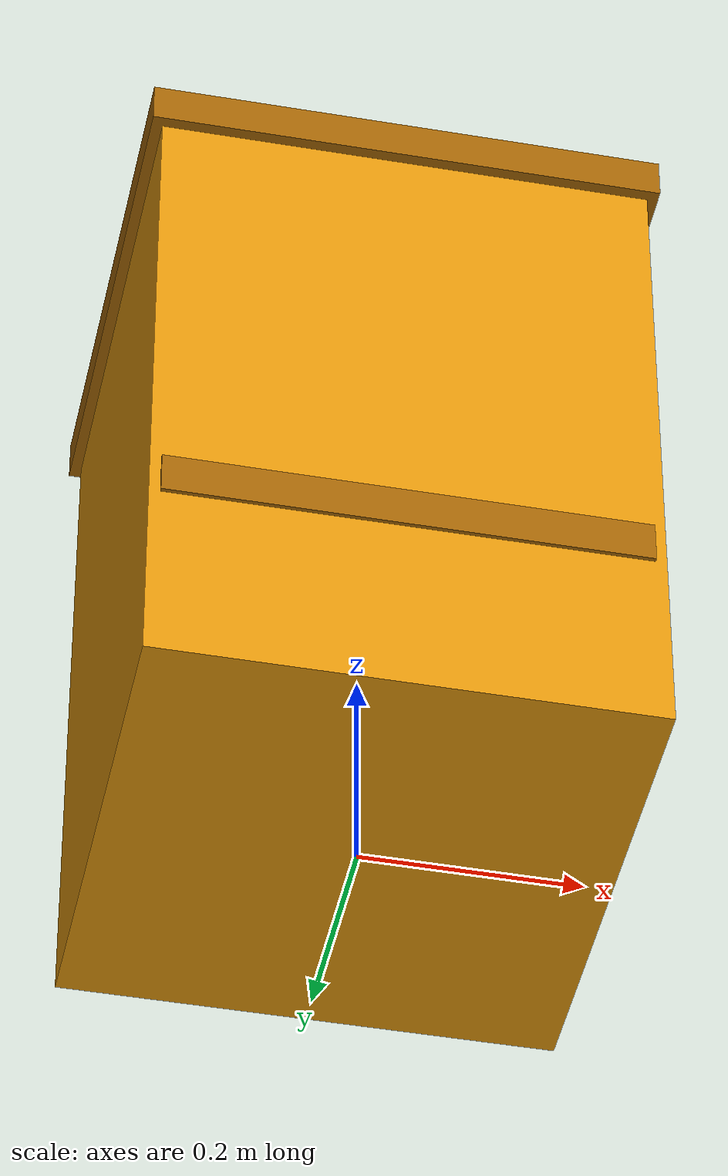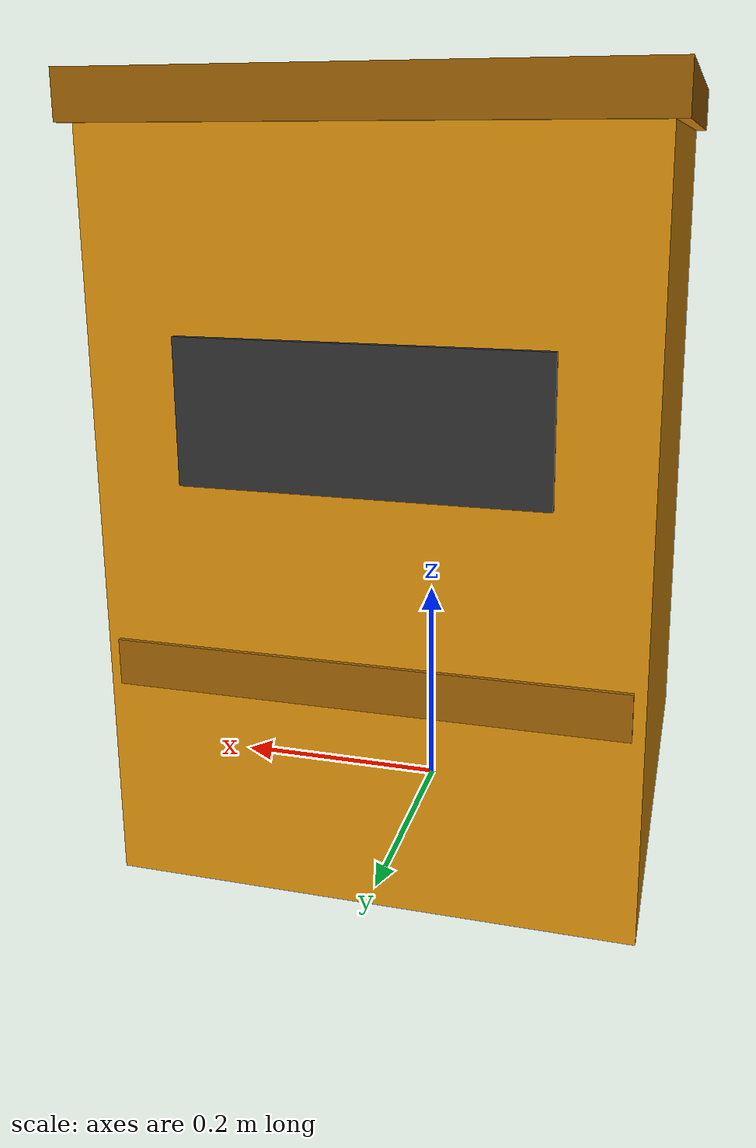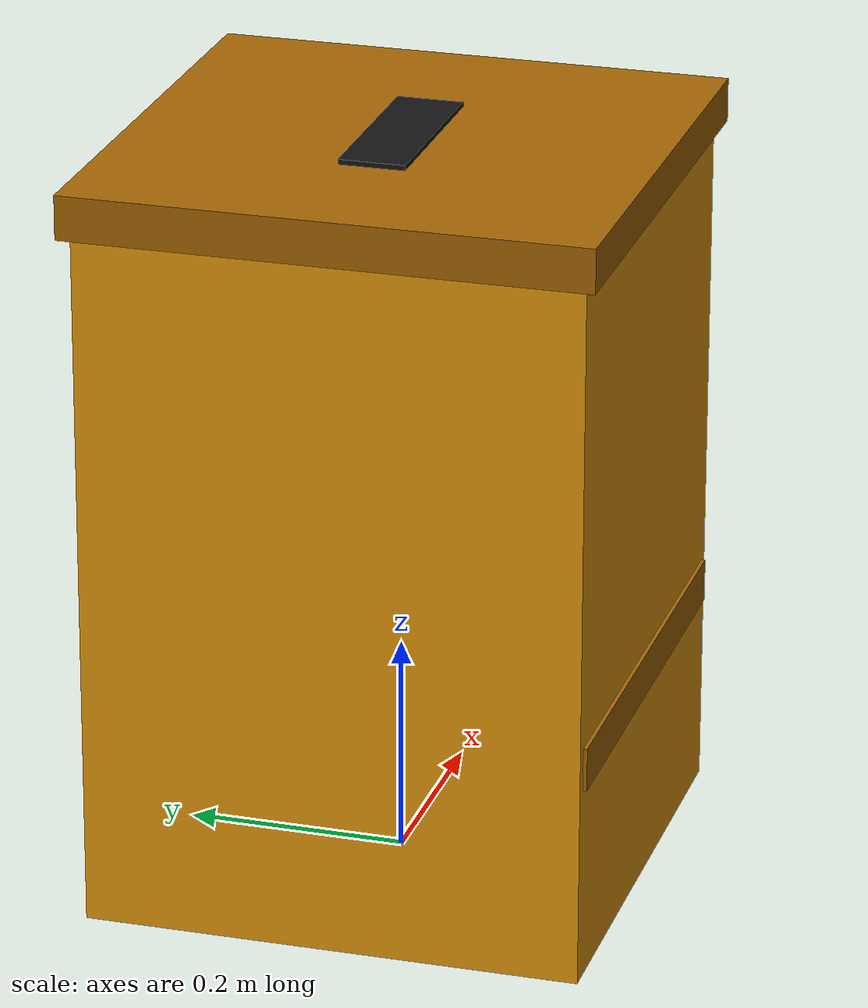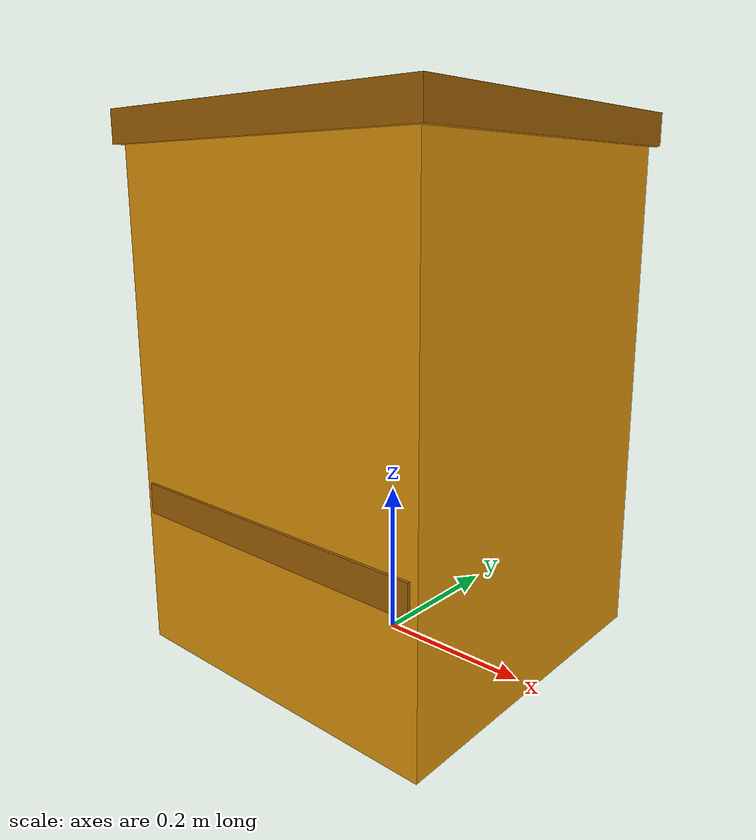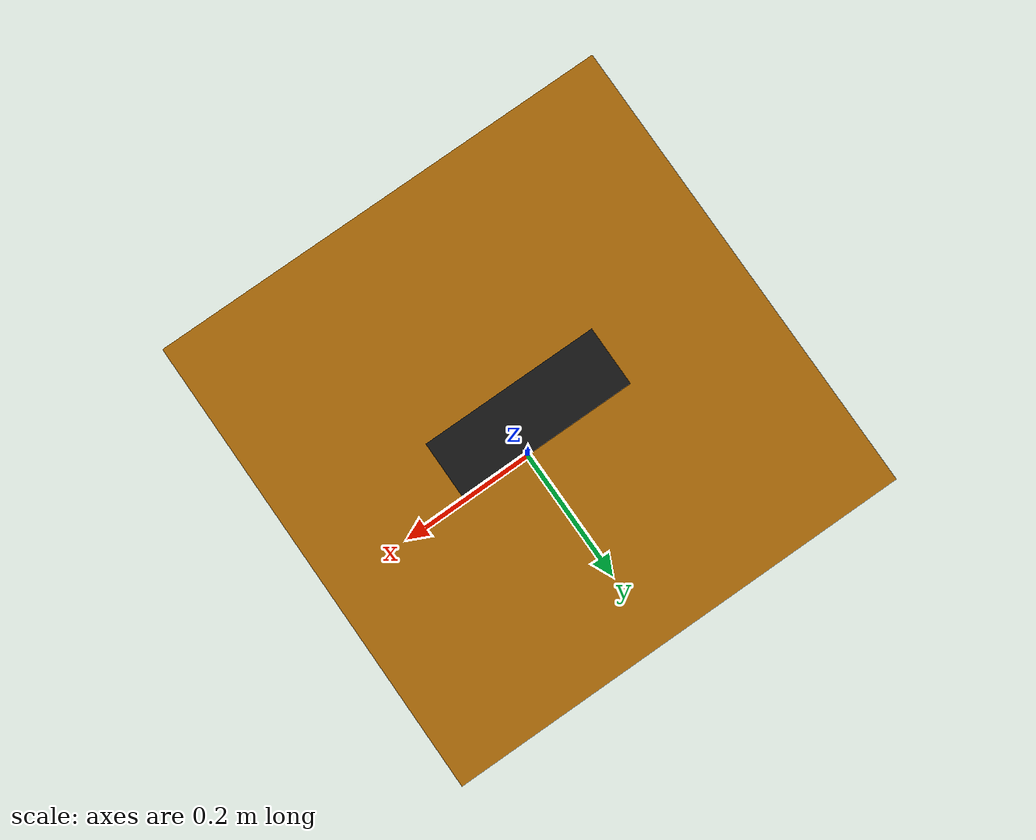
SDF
<?xml version="1.0"?>
<sdf version="1.8">
  <model name="metal_bin">
    <static>true</static>
    <link name="link">
      <!-- Main bin body: yellow/orange for metal recycling -->
      <collision name="body_collision">
        <geometry>
          <box>
            <size>0.45 0.45 0.65</size>
          </box>
        </geometry>
        <surface>
          <friction>
            <ode>
              <mu>0.8</mu>
              <mu2>0.8</mu2>
            </ode>
          </friction>
        </surface>
      </collision>
      <visual name="body_visual">
        <pose>0 0 0.325 0 0 0</pose>
        <geometry>
          <box>
            <size>0.45 0.45 0.65</size>
          </box>
        </geometry>
        <material>
          <ambient>0.85 0.55 0.05 1</ambient>
          <diffuse>0.9 0.6 0.05 1</diffuse>
          <specular>0.3 0.2 0.02 1</specular>
        </material>
      </visual>

      <!-- Lid -->
      <collision name="lid_collision">
        <pose>0 0 0.66 0 0 0</pose>
        <geometry>
          <box>
            <size>0.47 0.47 0.04</size>
          </box>
        </geometry>
      </collision>
      <visual name="lid_visual">
        <pose>0 0 0.66 0 0 0</pose>
        <geometry>
          <box>
            <size>0.47 0.47 0.04</size>
          </box>
        </geometry>
        <material>
          <ambient>0.6 0.35 0.02 1</ambient>
          <diffuse>0.65 0.4 0.02 1</diffuse>
          <specular>0.2 0.1 0.01 1</specular>
        </material>
      </visual>

      <!-- Label strip: dark band with METAL text area -->
      <visual name="label_visual">
        <pose>0 0.228 0.42 0 0 0</pose>
        <geometry>
          <box>
            <size>0.3 0.005 0.12</size>
          </box>
        </geometry>
        <material>
          <ambient>0.15 0.15 0.15 1</ambient>
          <diffuse>0.2 0.2 0.2 1</diffuse>
          <specular>0.05 0.05 0.05 1</specular>
        </material>
      </visual>

      <!-- Slot opening on top for cans/metal items -->
      <visual name="slot_visual">
        <pose>0 0 0.682 0 0 0</pose>
        <geometry>
          <box>
            <size>0.18 0.06 0.005</size>
          </box>
        </geometry>
        <material>
          <ambient>0.05 0.05 0.05 1</ambient>
          <diffuse>0.08 0.08 0.08 1</diffuse>
          <specular>0.02 0.02 0.02 1</specular>
        </material>
      </visual>

      <!-- Reinforcement ribs on sides -->
      <visual name="rib_front_visual">
        <pose>0 0.226 0.2 0 0 0</pose>
        <geometry>
          <box>
            <size>0.43 0.005 0.04</size>
          </box>
        </geometry>
        <material>
          <ambient>0.6 0.35 0.02 1</ambient>
          <diffuse>0.65 0.4 0.02 1</diffuse>
          <specular>0.2 0.1 0.01 1</specular>
        </material>
      </visual>
      <visual name="rib_back_visual">
        <pose>0 -0.226 0.2 0 0 0</pose>
        <geometry>
          <box>
            <size>0.43 0.005 0.04</size>
          </box>
        </geometry>
        <material>
          <ambient>0.6 0.35 0.02 1</ambient>
          <diffuse>0.65 0.4 0.02 1</diffuse>
          <specular>0.2 0.1 0.01 1</specular>
        </material>
      </visual>

      <inertial>
        <mass>4.5</mass>
        <inertia>
          <ixx>0.22</ixx>
          <iyy>0.22</iyy>
          <izz>0.18</izz>
          <ixy>0</ixy>
          <ixz>0</ixz>
          <iyz>0</iyz>
        </inertia>
      </inertial>
    </link>
  </model>
</sdf>
